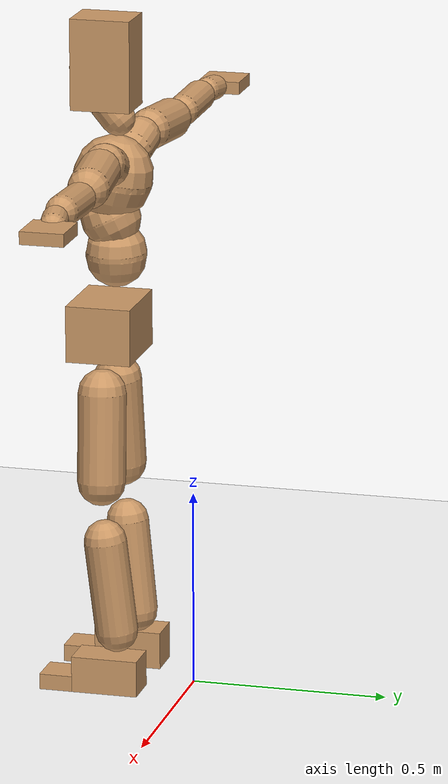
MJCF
<mujoco model="humanoid">
  <option integrator="implicitfast" />

  <visual>
    <global offwidth="1280" offheight="960" />
    <headlight active="1" ambient="0.34 0.34 0.34" diffuse="0.5 0.5 0.5" />
  </visual>

  <default>
    <joint damping="2" stiffness="2" armature="0.01" limited="true" solimplimit="0 .99 .01" />
    <geom condim="1" friction="0.7 0.005 0.0001" solimp=".99 .99 .003" solref="0.015 1" margin="0.001" rgba="0.8 0.6 .4 1" />
    <default class="smplcontact">
      <geom condim="3" friction="1. 0.005 0.0001" solref="0.015 1" solimp="0.98 0.98 0.001" priority="1" />
    </default>
    <default class="stiff_medium">
      <joint stiffness="10" />
    </default>
    <default class="stiff_medium_higher">
      <joint stiffness="50" />
    </default>
    <default class="stiff_high">
      <joint stiffness="100" />
    </default>
  </default>

  <asset>
    <texture type="skybox" builtin="gradient" rgb1="0.99 0.99 0.99" rgb2="0.608 0.828 0.892" width="100" />
    <texture builtin="flat" height="1278" mark="cross" markrgb="1 1 1" name="texgeom" random="0.01" rgb1="0.8 0.6 0.4" rgb2="0.8 0.6 0.4" type="cube" width="127" />
    <texture name="texplane" type="2d" builtin="checker" markrgb="1 1 1" rgb1="0.756 0.772 0.76" rgb2="0.6 0.6 0.6" width="100" height="100" />
    <material name="MatPlane" reflectance="0.5" texture="texplane" texrepeat="1 1" texuniform="true" />
    <material name="geom" texture="texgeom" texuniform="true" />
  </asset>

  <worldbody>
    <light name="tracking_light" pos="0 0 7" dir="0 0 -1" directional="true" cutoff="100" exponent="1" diffuse="1 1 1" specular="0.1 0.1 0.1" mode="trackcom" />
    <camera name="back" pos="0 3 2.4" xyaxes="-1 0 0 0 -1 2" mode="trackcom" />
    <camera name="side" pos="-3 0 2.4" xyaxes="0 -1 0 1 0 2" mode="trackcom" />
    <camera name="front_side" pos="-2.8 -2.8 0.8" xyaxes="0.5 -0.5 0 0.1 0.1 1" mode="trackcom" />
    <geom condim="3" name="floor" pos="0 0 0" rgba="1 1 1 1" size="100 100 .2" type="plane" material="MatPlane" />
    <body name="Pelvis" pos="-0.0018 -0.2233 0.9367" euler="90 0 0">
      <site name="Pelvis" size="0.01" />
      <freejoint name="Pelvis" />
      <geom type="box" pos="-0.0000 -0.0121 -0.0055" size="0.1069 0.0722 0.083" quat="1.0000 0.0000 0.0000 0.0000" density="3165.830099" name="Pelvis" />
      <body name="L_Hip" pos="0.0695 -0.0914 -0.0068">
        <joint name="L_Hip_x" type="hinge" pos="0 0 0" axis="1 0 0" stiffness="10.0" range="-160.0 22.92" class="stiff_medium" damping="15.0" armature="0.01"/>
        <joint name="L_Hip_y" type="hinge" pos="0 0 0" axis="0 1 0" stiffness="10.0" range="-70.0 70.0" class="stiff_medium" damping="10.000000000000004" armature="0.01000000000000001"/>
        <joint name="L_Hip_z" type="hinge" pos="0 0 0" axis="0 0 1" stiffness="10.0" range="-28.65 90.0" class="stiff_medium" damping="10.0" armature="0.01"/>
        <geom type="capsule" density="2040.816327" fromto="0.0069 -0.075 -0.0009 0.0274 -0.3002 -0.0036" size="0.0615" name="L_Hip" />
        <body name="L_Knee" pos="0.0343 -0.3752 -0.0045">
          <joint name="L_Knee_x" type="hinge" pos="0 0 0" axis="1 0 0" range="-5.16 171.89" damping="7.999999999999999" armature="0.009999999999999998" stiffness="2.0"/>
          <joint name="L_Knee_y" type="hinge" pos="0 0 0" axis="0 1 0" range="-4.58 6.88" damping="7.999999999999998" armature="0.009999999999999995" stiffness="2.0"/>
          <joint name="L_Knee_z" type="hinge" pos="0 0 0" axis="0 0 1" range="-6.88 4.58" damping="7.999999999999999" armature="0.009999999999999998" stiffness="2.0"/>
          <geom type="capsule" density="1234.567901" fromto="-0.0027 -0.0796 -0.0087 -0.0109 -0.3184 -0.035" size="0.0541" name="L_Knee" />
          <body name="L_Ankle" pos="-0.0136 -0.398 -0.0437">
            <joint name="L_Ankle_x" type="hinge" pos="0 0 0" axis="1 0 0" range="-45.84 45.84" class="stiff_medium" damping="6.000000000000037" armature="0.010000000000000127" stiffness="10.0"/>
            <joint name="L_Ankle_y" type="hinge" pos="0 0 0" axis="0 1 0" range="-74.48 22.92" class="stiff_medium" damping="3.0" armature="0.010000000000000002" stiffness="10.0"/>
            <joint name="L_Ankle_z" type="hinge" pos="0 0 0" axis="0 0 1" range="-4.58 4.58" class="stiff_medium" damping="5.999999999999975" armature="0.009999999999999919" stiffness="10.0"/>
            <geom type="box" pos="0.0233 -0.0239 0.0242" size="0.0483 0.0464 0.085" quat="1.0000 0.0000 0.0000 0.0000" density="449.071558" name="L_Ankle" class="smplcontact" />
            <body name="L_Toe" pos="0.0264 -0.0558 0.1193">
              <joint name="L_Toe_x" type="hinge" pos="0 0 0" axis="1 0 0" range="-91.67 22.92" armature="0.009999999999998933" damping="1.9999999999998932" stiffness="2.0"/>
              <joint name="L_Toe_y" type="hinge" pos="0 0 0" axis="0 1 0" range="-4.58 4.58" armature="0.009999999999999976" damping="1.9999999999999976" stiffness="2.0"/>
              <joint name="L_Toe_z" type="hinge" pos="0 0 0" axis="0 0 1" range="-4.58 4.58" armature="0.009999999999998701" damping="1.9999999999998699" stiffness="2.0"/>
              <geom type="box" pos="-0.003 0.0055 0.0248" size="0.0478 0.02 0.0496" quat="1.0000 0.0000 0.0000 0.0000" density="423.206892" name="L_Toe" class="smplcontact" />
            </body>
          </body>
        </body>
      </body>
      <body name="R_Hip" pos="-0.0677 -0.0905 -0.0043">
        <joint name="R_Hip_x" type="hinge" pos="0 0 0" axis="1 0 0" stiffness="10.0" range="-160.0 22.92" class="stiff_medium" damping="15.0" armature="0.01"/>
        <joint name="R_Hip_y" type="hinge" pos="0 0 0" axis="0 1 0" stiffness="10.0" range="-70.0 70.0" class="stiff_medium" damping="10.000000000000004" armature="0.01000000000000001"/>
        <joint name="R_Hip_z" type="hinge" pos="0 0 0" axis="0 0 1" stiffness="10.0" range="-90.0 28.65" class="stiff_medium" damping="10.0" armature="0.01"/>
        <geom type="capsule" density="2040.816327" fromto="-0.0077 -0.0765 -0.0018 -0.0306 -0.3061 -0.0071" size="0.0606" name="R_Hip" />
        <body name="R_Knee" pos="-0.0383 -0.3826 -0.0089">
          <joint name="R_Knee_x" type="hinge" pos="0 0 0" axis="1 0 0" range="-5.16 171.89" damping="7.999999999999999" armature="0.009999999999999998" stiffness="2.0"/>
          <joint name="R_Knee_y" type="hinge" pos="0 0 0" axis="0 1 0" range="-6.88 4.58" damping="7.999999999999998" armature="0.009999999999999995" stiffness="2.0"/>
          <joint name="R_Knee_z" type="hinge" pos="0 0 0" axis="0 0 1" range="-4.58 6.88" damping="7.999999999999999" armature="0.009999999999999998" stiffness="2.0"/>
          <geom type="capsule" density="1234.567901" fromto="0.0032 -0.0797 -0.0085 0.0126 -0.3187 -0.0338" size="0.0541" name="R_Knee" />
          <body name="R_Ankle" pos="0.0158 -0.3984 -0.0423">
            <joint name="R_Ankle_x" type="hinge" pos="0 0 0" axis="1 0 0" range="-45.84 45.84" class="stiff_medium" damping="6.000000000000037" armature="0.010000000000000127" stiffness="10.0"/>
            <joint name="R_Ankle_y" type="hinge" pos="0 0 0" axis="0 1 0" range="-22.92 74.48" class="stiff_medium" damping="3.0" armature="0.010000000000000002" stiffness="10.0"/>
            <joint name="R_Ankle_z" type="hinge" pos="0 0 0" axis="0 0 1" range="-4.58 4.58" class="stiff_medium" damping="5.999999999999975" armature="0.009999999999999919" stiffness="10.0"/>
            <geom type="box" pos="-0.0212 -0.0174 0.0256" size="0.0483 0.0478 0.0865" quat="1.0000 0.0000 0.0000 0.0000" density="434.700981" name="R_Ankle" class="smplcontact" />
            <body name="R_Toe" pos="-0.0254 -0.0481 0.1233">
              <joint name="R_Toe_x" type="hinge" pos="0 0 0" axis="1 0 0" range="-91.67 22.92" armature="0.009999999999998933" damping="1.9999999999998932" stiffness="2.0"/>
              <joint name="R_Toe_y" type="hinge" pos="0 0 0" axis="0 1 0" range="-4.58 4.58" armature="0.009999999999999976" damping="1.9999999999999976" stiffness="2.0"/>
              <joint name="R_Toe_z" type="hinge" pos="0 0 0" axis="0 0 1" range="-4.58 4.58" armature="0.009999999999998701" damping="1.9999999999998699" stiffness="2.0"/>
              <geom type="box" pos="0.0042 0.0045 0.0227" size="0.0479 0.0216 0.0493" quat="1.0000 0.0000 0.0000 0.0000" density="407.384095" name="R_Toe" class="smplcontact" />
            </body>
          </body>
        </body>
      </body>
      <body name="Torso" pos="-0.0025 0.109 -0.0267">
        <joint name="Torso_x" type="hinge" pos="0 0 0" axis="1 0 0" range="-25.78 57.3" class="stiff_medium" damping="15.026504417650502" armature="0.010027654392897904" stiffness="10.007694772727273"/>
        <joint name="Torso_y" type="hinge" pos="0 0 0" axis="0 1 0" range="-57.3 57.3" class="stiff_high" damping="20.015098709190056" armature="0.010000594455056204" stiffness="100.1450909090909"/>
        <joint name="Torso_z" type="hinge" pos="0 0 0" axis="0 0 1" range="-34.38 34.38" class="stiff_high" damping="20.024293525642918" armature="0.010018547160022102" stiffness="100.05750454545455"/>
        <geom type="capsule" density="2040.816327" fromto="0.0025 0.0608 0.0005 0.003 0.0743 0.0006" size="0.0769" name="Torso" />
        <body name="Spine" pos="0.0055 0.1352 0.0011">
          <joint name="Spine_x" type="hinge" pos="0 0 0" axis="1 0 0" stiffness="10.013677045454546" range="-25.78 57.3" class="stiff_medium" damping="15.047055212503015" armature="0.010049094499691255"/>
          <joint name="Spine_y" type="hinge" pos="0 0 0" axis="0 1 0" stiffness="10.01353409090909" range="-57.3 57.3" class="stiff_high" damping="8.005638717020275" armature="0.010000566902379769"/>
          <joint name="Spine_z" type="hinge" pos="0 0 0" axis="0 0 1" stiffness="20.030769090909093" range="-34.38 34.38" class="stiff_high" damping="12.022994090892643" armature="0.010022940363896636"/>
          <geom type="capsule" density="2040.816327" fromto="0.0007 0.0238 0.0114 0.0008 0.0291 0.014" size="0.0755" name="Spine" />
          <body name="Chest" pos="0.0015 0.0529 0.0254">
            <joint name="Chest_x" type="hinge" pos="0 0 0" axis="1 0 0" stiffness="10.025995454545454" range="-25.78 57.3" class="stiff_medium" damping="15.065859452861982" armature="0.010061849145939052"/>
            <joint name="Chest_y" type="hinge" pos="0 0 0" axis="0 1 0" stiffness="10.00953272727273" range="-57.3 57.3" class="stiff_high" damping="8.0037821214336" armature="0.009999924882987418"/>
            <joint name="Chest_z" type="hinge" pos="0 0 0" axis="0 0 1" stiffness="20.04161681818182" range="-34.38 34.38" class="stiff_high" damping="12.026765484445601" armature="0.01002380095503679"/>
            <geom type="capsule" density="2040.816327" fromto="-0.0009 0.0682 -0.0173 -0.001 0.0833 -0.0212" size="0.1002" name="Chest" />
            <body name="Neck" pos="-0.0028 0.2139 -0.0429">
              <joint name="Neck_x" type="hinge" pos="0 0 0" axis="1 0 0" range="-28.65 57.3" class="stiff_medium_higher" damping="10.156201731515154" armature="0.010197270455069218" stiffness="50.57649204545454"/>
              <joint name="Neck_y" type="hinge" pos="0 0 0" axis="0 1 0" range="-40.11 40.11" class="stiff_medium_higher" damping="10.09847464772595" armature="0.010079507034156452" stiffness="50.58738977272728"/>
              <joint name="Neck_z" type="hinge" pos="0 0 0" axis="0 0 1" range="-40.11 40.11" class="stiff_medium_higher" damping="10.160616349269969" armature="0.010199976629801651" stiffness="50.60703977272728"/>
              <geom type="capsule" density="1000" fromto="0.001 0.013 0.0103 0.0041 0.052 0.0411" size="0.0436" name="Neck" />
              <body name="Head" pos="0.005265 0.0658125 0.0519412">
                <joint name="Head_x" type="hinge" pos="0 0 0" axis="1 0 0" range="-28.65 57.3" class="stiff_medium_higher" damping="2.0263591442136093" armature="0.010138596003303977" stiffness="50.62500000000001"/>
                <joint name="Head_y" type="hinge" pos="0 0 0" axis="0 1 0" range="-40.11 40.11" class="stiff_medium_higher" damping="2.0136277227332497" armature="0.010011596557431833" stiffness="50.62500000000001"/>
                <joint name="Head_z" type="hinge" pos="0 0 0" axis="0 0 1" range="-40.11 40.11" class="stiff_medium_higher" damping="2.026987453225785" armature="0.010144884285270994" stiffness="50.62500000000001"/>
                <geom type="box" pos="-0.0042525 0.088695 -0.011745" size="0.0606 0.1154 0.076" quat="1.0000 0.0000 0.0000 0.0000" density="1018.069894" name="Head" />
                <geom type="capsule" name="nose" size="0.02 0.01" pos="0 0.070875 0.050625" quat="1 0 0 0" mass="0" contype="0" conaffinity="0" />
              </body>
            </body>
            <body name="L_Thorax" pos="0.0788 0.1217 -0.0341">
              <joint name="L_Thorax_x" type="hinge" pos="0 0 0" axis="1 0 0" range="-10.89 4.58" class="stiff_medium_higher" damping="19.999999999999936" armature="0.009999999999999936" stiffness="50.0"/>
              <joint name="L_Thorax_y" type="hinge" pos="0 0 0" axis="0 1 0" range="-28.65 17.19" class="stiff_medium_higher" damping="20.0" armature="0.01" stiffness="50.0"/>
              <joint name="L_Thorax_z" type="hinge" pos="0 0 0" axis="0 0 1" range="-31.51 40.11" class="stiff_medium_higher" damping="20.0" armature="0.01" stiffness="50.0"/>
              <geom type="capsule" density="1000" fromto="0.0182 0.0061 -0.0018 0.0728 0.0244 -0.0071" size="0.0521" name="L_Thorax" />
              <body name="L_Shoulder" pos="0.091 0.0305 -0.0089">
                <joint name="L_Shoulder_x" type="hinge" pos="0 0 0" axis="1 0 0" range="-97.4 97.4" class="stiff_medium" damping="6.0000000000000515" armature="0.010000000000000174" stiffness="10.0"/>
                <joint name="L_Shoulder_y" type="hinge" pos="0 0 0" axis="0 1 0" range="-108.86 80.21" class="stiff_medium" damping="5.999999999999999" armature="0.009999999999999998" stiffness="10.0"/>
                <joint name="L_Shoulder_z" type="hinge" pos="0 0 0" axis="0 0 1" range="-97.4 85.94" class="stiff_medium" damping="6.0" armature="0.010000000000000002" stiffness="10.0"/>
                <geom type="capsule" density="1000" fromto="0.0519 -0.0026 -0.0055 0.2077 -0.0102 -0.022" size="0.0517" name="L_Shoulder" />
                <body name="L_Elbow" pos="0.2596 -0.0128 -0.0275">
                  <joint name="L_Elbow_x" type="hinge" pos="0 0 0" axis="1 0 0" range="-17.19 4.58" damping="4.999999999999907" armature="0.009999999999999627" stiffness="2.0"/>
                  <joint name="L_Elbow_y" type="hinge" pos="0 0 0" axis="0 1 0" range="-180.0 17.19" damping="5.000000000000005" armature="0.010000000000000023" stiffness="2.0"/>
                  <joint name="L_Elbow_z" type="hinge" pos="0 0 0" axis="0 0 1" range="-100.84 4.58" damping="5.000000000000002" armature="0.010000000000000009" stiffness="2.0"/>
                  <geom type="capsule" density="1000" fromto="0.0498 0.0018 -0.0002 0.1994 0.0072 -0.0009" size="0.0405" name="L_Elbow" />
                  <body name="L_Wrist" pos="0.2492 0.009 -0.0012">
                    <joint name="L_Wrist_x" type="hinge" pos="0 0 0" axis="1 0 0" range="-180.0 22.92" armature="0.009999999999999596" damping="1.9999999999999596" stiffness="2.0"/>
                    <joint name="L_Wrist_y" type="hinge" pos="0 0 0" axis="0 1 0" range="-17.19 17.19" armature="0.009999999999999882" damping="1.999999999999988" stiffness="2.0"/>
                    <joint name="L_Wrist_z" type="hinge" pos="0 0 0" axis="0 0 1" range="-22.92 22.92" armature="0.009999999999999995" damping="1.9999999999999996" stiffness="2.0"/>
                    <geom type="capsule" density="1000" fromto="0.0168 -0.0016 -0.003 0.0672 -0.0065 -0.012" size="0.0318" name="L_Wrist" class="smplcontact" />
                    <body name="L_Hand" pos="0.084 -0.0082 -0.0149">
                      <joint name="L_Hand_x" type="hinge" pos="0 0 0" axis="1 0 0" range="-17.19 17.19" armature="0.009999999999999867" damping="1.9999999999999867" stiffness="2.0"/>
                      <joint name="L_Hand_y" type="hinge" pos="0 0 0" axis="0 1 0" range="-51.57 51.57" armature="0.00999999999999994" damping="1.999999999999994" stiffness="2.0"/>
                      <joint name="L_Hand_z" type="hinge" pos="0 0 0" axis="0 0 1" range="-91.67 91.67" armature="0.010000000000000162" damping="2.000000000000016" stiffness="2.0"/>
                      <geom type="box" pos="0.0493 0.001 -0.0058" size="0.0585 0.0158 0.0538" quat="1.0000 0.0000 0.0000 0.0000" density="400.552564" name="L_Hand" class="smplcontact" />
                    </body>
                  </body>
                </body>
              </body>
            </body>
            <body name="R_Thorax" pos="-0.0818 0.1188 -0.0386">
              <joint name="R_Thorax_x" type="hinge" pos="0 0 0" axis="1 0 0" range="-10.89 4.58" class="stiff_medium_higher" damping="19.999999999999936" armature="0.009999999999999936" stiffness="50.0"/>
              <joint name="R_Thorax_y" type="hinge" pos="0 0 0" axis="0 1 0" range="-17.19 28.65" class="stiff_medium_higher" damping="20.0" armature="0.01" stiffness="50.0"/>
              <joint name="R_Thorax_z" type="hinge" pos="0 0 0" axis="0 0 1" range="-40.11 31.51" class="stiff_medium_higher" damping="20.0" armature="0.01" stiffness="50.0"/>
              <geom type="capsule" density="1000" fromto="-0.0192 0.0065 -0.0018 -0.0768 0.026 -0.0073" size="0.0511" name="R_Thorax" />
              <body name="R_Shoulder" pos="-0.096 0.0326 -0.0091">
                <joint name="R_Shoulder_x" type="hinge" pos="0 0 0" axis="1 0 0" range="-97.4 97.4" class="stiff_medium" damping="6.0000000000000515" armature="0.010000000000000174" stiffness="10.0"/>
                <joint name="R_Shoulder_y" type="hinge" pos="0 0 0" axis="0 1 0" range="-80.21 108.86" class="stiff_medium" damping="5.999999999999999" armature="0.009999999999999998" stiffness="10.0"/>
                <joint name="R_Shoulder_z" type="hinge" pos="0 0 0" axis="0 0 1" range="-85.94 97.4" class="stiff_medium" damping="6.0" armature="0.010000000000000002" stiffness="10.0"/>
                <geom type="capsule" density="1000" fromto="-0.0507 -0.0027 -0.0043 -0.203 -0.0107 -0.0171" size="0.0531" name="R_Shoulder" />
                <body name="R_Elbow" pos="-0.2537 -0.0133 -0.0214">
                  <joint name="R_Elbow_x" type="hinge" pos="0 0 0" axis="1 0 0" range="-17.19 4.58" damping="4.999999999999907" armature="0.009999999999999627" stiffness="2.0"/>
                  <joint name="R_Elbow_y" type="hinge" pos="0 0 0" axis="0 1 0" range="-17.19 180.0" damping="5.000000000000005" armature="0.010000000000000023" stiffness="2.0"/>
                  <joint name="R_Elbow_z" type="hinge" pos="0 0 0" axis="0 0 1" range="-4.58 100.84" damping="5.000000000000002" armature="0.010000000000000009" stiffness="2.0"/>
                  <geom type="capsule" density="1000" fromto="-0.0511 0.0016 -0.0011 -0.2042 0.0062 -0.0044" size="0.0408" name="R_Elbow" />
                  <body name="R_Wrist" pos="-0.2553 0.0078 -0.0056">
                    <joint name="R_Wrist_x" type="hinge" pos="0 0 0" axis="1 0 0" range="-180.0 22.92" armature="0.009999999999999596" damping="1.9999999999999596" stiffness="2.0"/>
                    <joint name="R_Wrist_y" type="hinge" pos="0 0 0" axis="0 1 0" range="-17.19 17.19" armature="0.009999999999999882" damping="1.999999999999988" stiffness="2.0"/>
                    <joint name="R_Wrist_z" type="hinge" pos="0 0 0" axis="0 0 1" range="-22.92 22.92" armature="0.009999999999999995" damping="1.9999999999999996" stiffness="2.0"/>
                    <geom type="capsule" density="1000" fromto="-0.0169 -0.0012 -0.0021 -0.0677 -0.0049 -0.0083" size="0.0326" name="R_Wrist" class="smplcontact" />
                    <body name="R_Hand" pos="-0.0846 -0.0061 -0.0103">
                      <joint name="R_Hand_x" type="hinge" pos="0 0 0" axis="1 0 0" range="-17.19 17.19" armature="0.009999999999999867" damping="1.9999999999999867" stiffness="2.0"/>
                      <joint name="R_Hand_y" type="hinge" pos="0 0 0" axis="0 1 0" range="-51.57 51.57" armature="0.00999999999999994" damping="1.999999999999994" stiffness="2.0"/>
                      <joint name="R_Hand_z" type="hinge" pos="0 0 0" axis="0 0 1" range="-91.67 91.67" armature="0.010000000000000162" damping="2.000000000000016" stiffness="2.0"/>
                      <geom type="box" pos="-0.0462 -0.0009 -0.0079" size="0.0569 0.0164 0.0546" quat="1.0000 0.0000 0.0000 0.0000" density="403.679611" name="R_Hand" class="smplcontact" />
                    </body>
                  </body>
                </body>
              </body>
            </body>
          </body>
        </body>
      </body>
    </body>
  </worldbody>
  <actuator>
    <general name="L_Hip_x" joint="L_Hip_x" biastype="affine" gainprm="287.33006409732246" biasprm="-215.3247604770444 -180.0 -2.0" ctrllimited="true" ctrlrange="-1 1" forcerange="-360.0 360.0" />
    <general name="L_Hip_y" joint="L_Hip_y" biastype="affine" gainprm="219.9114857512855" biasprm="0.0 -180.0 -2.000000000000001" ctrllimited="true" ctrlrange="-1 1" forcerange="-360.0 360.0" />
    <general name="L_Hip_z" joint="L_Hip_z" biastype="affine" gainprm="186.3749841742145" biasprm="96.3683546488669 -180.0 -2.0" ctrllimited="true" ctrlrange="-1 1" forcerange="-360.0 360.0" />
    <general name="L_Knee_x" joint="L_Knee_x" biastype="affine" gainprm="278.10948965903646" biasprm="261.8988715665131 -180.0 -1.9999999999999998" ctrllimited="true" ctrlrange="-1 1" forcerange="-360.0 360.0" />
    <general name="L_Knee_y" joint="L_Knee_y" biastype="affine" gainprm="18.001325905069514" biasprm="3.612831551628262 -180.0 -1.9999999999999996" ctrllimited="true" ctrlrange="-1 1" forcerange="-360.0 360.0" />
    <general name="L_Knee_z" joint="L_Knee_z" biastype="affine" gainprm="18.001325905069514" biasprm="-3.612831551628262 -180.0 -1.9999999999999998" ctrllimited="true" ctrlrange="-1 1" forcerange="-360.0 360.0" />
    <general name="L_Ankle_x" joint="L_Ankle_x" biastype="affine" gainprm="72.00530362027807" biasprm="0.0 -90.0 -2.0000000000000124" ctrllimited="true" ctrlrange="-1 1" forcerange="-180.0 180.0" />
    <general name="L_Ankle_y" joint="L_Ankle_y" biastype="affine" gainprm="76.49778111491148" biasprm="-40.49512930477244 -90.0 -2.0" ctrllimited="true" ctrlrange="-1 1" forcerange="-180.0 180.0" />
    <general name="L_Ankle_z" joint="L_Ankle_z" biastype="affine" gainprm="7.1942471767206255" biasprm="0.0 -90.0 -1.9999999999999918" ctrllimited="true" ctrlrange="-1 1" forcerange="-180.0 180.0" />
    <general name="L_Toe_x" joint="L_Toe_x" biastype="affine" gainprm="71.99902043497087" biasprm="-43.19689898685965 -72.0 -0.7999999999999573" ctrllimited="true" ctrlrange="-1 1" forcerange="-144.0 144.0" />
    <general name="L_Toe_y" joint="L_Toe_y" biastype="affine" gainprm="5.755397741376501" biasprm="0.0 -72.0 -0.799999999999999" ctrllimited="true" ctrlrange="-1 1" forcerange="-144.0 144.0" />
    <general name="L_Toe_z" joint="L_Toe_z" biastype="affine" gainprm="5.755397741376501" biasprm="0.0 -72.0 -0.799999999999948" ctrllimited="true" ctrlrange="-1 1" forcerange="-144.0 144.0" />
    <general name="R_Hip_x" joint="R_Hip_x" biastype="affine" gainprm="287.33006409732246" biasprm="-215.3247604770444 -180.0 -2.0" ctrllimited="true" ctrlrange="-1 1" forcerange="-360.0 360.0" />
    <general name="R_Hip_y" joint="R_Hip_y" biastype="affine" gainprm="219.9114857512855" biasprm="0.0 -180.0 -2.000000000000001" ctrllimited="true" ctrlrange="-1 1" forcerange="-360.0 360.0" />
    <general name="R_Hip_z" joint="R_Hip_z" biastype="affine" gainprm="186.3749841742145" biasprm="-96.3683546488669 -180.0 -2.0" ctrllimited="true" ctrlrange="-1 1" forcerange="-360.0 360.0" />
    <general name="R_Knee_x" joint="R_Knee_x" biastype="affine" gainprm="278.10948965903646" biasprm="261.8988715665131 -180.0 -1.9999999999999998" ctrllimited="true" ctrlrange="-1 1" forcerange="-360.0 360.0" />
    <general name="R_Knee_y" joint="R_Knee_y" biastype="affine" gainprm="18.001325905069514" biasprm="-3.612831551628262 -180.0 -1.9999999999999996" ctrllimited="true" ctrlrange="-1 1" forcerange="-360.0 360.0" />
    <general name="R_Knee_z" joint="R_Knee_z" biastype="affine" gainprm="18.001325905069514" biasprm="3.612831551628262 -180.0 -1.9999999999999998" ctrllimited="true" ctrlrange="-1 1" forcerange="-360.0 360.0" />
    <general name="R_Ankle_x" joint="R_Ankle_x" biastype="affine" gainprm="72.00530362027807" biasprm="0.0 -90.0 -2.0000000000000124" ctrllimited="true" ctrlrange="-1 1" forcerange="-180.0 180.0" />
    <general name="R_Ankle_y" joint="R_Ankle_y" biastype="affine" gainprm="76.49778111491148" biasprm="40.49512930477244 -90.0 -2.0" ctrllimited="true" ctrlrange="-1 1" forcerange="-180.0 180.0" />
    <general name="R_Ankle_z" joint="R_Ankle_z" biastype="affine" gainprm="7.1942471767206255" biasprm="0.0 -90.0 -1.9999999999999918" ctrllimited="true" ctrlrange="-1 1" forcerange="-180.0 180.0" />
    <general name="R_Toe_x" joint="R_Toe_x" biastype="affine" gainprm="71.99902043497087" biasprm="-43.19689898685965 -72.0 -0.7999999999999573" ctrllimited="true" ctrlrange="-1 1" forcerange="-144.0 144.0" />
    <general name="R_Toe_y" joint="R_Toe_y" biastype="affine" gainprm="5.755397741376501" biasprm="0.0 -72.0 -0.799999999999999" ctrllimited="true" ctrlrange="-1 1" forcerange="-144.0 144.0" />
    <general name="R_Toe_z" joint="R_Toe_z" biastype="affine" gainprm="5.755397741376501" biasprm="0.0 -72.0 -0.799999999999948" ctrllimited="true" ctrlrange="-1 1" forcerange="-144.0 144.0" />
    <general name="Torso_x" joint="Torso_x" biastype="affine" gainprm="174.13623595678766" biasprm="66.06613092631133 -240.18467454545456 -4.007067844706801" ctrllimited="true" ctrlrange="-1 1" forcerange="-360.27701181818185 360.27701181818185" />
    <general name="Torso_y" joint="Torso_y" biastype="affine" gainprm="240.3659225663146" biasprm="0.0 -240.34821818181814 -4.003019741838012" ctrllimited="true" ctrlrange="-1 1" forcerange="-360.52232727272724 360.52232727272724" />
    <general name="Torso_z" joint="Torso_z" biastype="affine" gainprm="144.09341988565615" biasprm="0.0 -240.1380109090909 -4.0048587051285836" ctrllimited="true" ctrlrange="-1 1" forcerange="-360.20701636363634 360.20701636363634" />
    <general name="Spine_x" joint="Spine_x" biastype="affine" gainprm="174.24032890514903" biasprm="66.10562309930545 -240.32824909090908 -4.0125480566674705" ctrllimited="true" ctrlrange="-1 1" forcerange="-360.49237363636365 360.49237363636365" />
    <general name="Spine_y" joint="Spine_y" biastype="affine" gainprm="240.34252084263804" biasprm="0.0 -240.3248181818182 -4.002819358510138" ctrllimited="true" ctrlrange="-1 1" forcerange="-360.4872272727273 360.4872272727273" />
    <general name="Spine_z" joint="Spine_z" biastype="affine" gainprm="144.23216101385907" biasprm="0.0 -240.36922909090913 -4.0076646969642145" ctrllimited="true" ctrlrange="-1 1" forcerange="-360.5538436363637 360.5538436363637" />
    <general name="Chest_x" joint="Chest_x" biastype="affine" gainprm="174.45467211212937" biasprm="66.186943487895 -240.62389090909087 -4.017562520763195" ctrllimited="true" ctrlrange="-1 1" forcerange="-360.9358363636363 360.9358363636363" />
    <general name="Chest_y" joint="Chest_y" biastype="affine" gainprm="240.24648104146092" biasprm="0.0 -240.22878545454552 -4.0018910607168" ctrllimited="true" ctrlrange="-1 1" forcerange="-360.34317818181825 360.34317818181825" />
    <general name="Chest_z" joint="Chest_z" biastype="affine" gainprm="144.31027040344532" biasprm="0.0 -240.4994018181818 -4.008921828148534" ctrllimited="true" ctrlrange="-1 1" forcerange="-360.7491027272727 360.7491027272727" />
    <general name="Neck_x" joint="Neck_x" biastype="affine" gainprm="27.313317493361495" biasprm="9.104439164453831 -36.415074272727274 -0.8124961385212123" ctrllimited="true" ctrlrange="-1 1" forcerange="-72.83014854545455 72.83014854545455" />
    <general name="Neck_y" joint="Neck_y" biastype="affine" gainprm="25.497922519598035" biasprm="0.0 -36.42292063636364 -0.8078779718180761" ctrllimited="true" ctrlrange="-1 1" forcerange="-72.84584127272728 72.84584127272728" />
    <general name="Neck_z" joint="Neck_z" biastype="affine" gainprm="25.507826849111005" biasprm="0.0 -36.43706863636364 -0.8128493079415975" ctrllimited="true" ctrlrange="-1 1" forcerange="-72.87413727272728 72.87413727272728" />
    <general name="Head_x" joint="Head_x" biastype="affine" gainprm="18.226342478882888" biasprm="6.075447492960962 -24.300000000000004 -0.8105436576854438" ctrllimited="true" ctrlrange="-1 1" forcerange="-48.60000000000001 48.60000000000001" />
    <general name="Head_y" joint="Head_y" biastype="affine" gainprm="17.011252980290692" biasprm="0.0 -24.300000000000004 -0.8054510890933" ctrllimited="true" ctrlrange="-1 1" forcerange="-48.60000000000001 48.60000000000001" />
    <general name="Head_z" joint="Head_z" biastype="affine" gainprm="17.011252980290692" biasprm="0.0 -24.300000000000004 -0.810794981290314" ctrllimited="true" ctrlrange="-1 1" forcerange="-48.60000000000001 48.60000000000001" />
    <general name="L_Thorax_x" joint="L_Thorax_x" biastype="affine" gainprm="16.200146117011364" biasprm="-6.6078165480505335 -120.0 -1.599999999999995" ctrllimited="true" ctrlrange="-1 1" forcerange="-240.0 240.0" />
    <general name="L_Thorax_y" joint="L_Thorax_y" biastype="affine" gainprm="48.00353574685204" biasprm="-12.00088393671301 -120.0 -1.6" ctrllimited="true" ctrlrange="-1 1" forcerange="-240.0 240.0" />
    <general name="L_Thorax_z" joint="L_Thorax_z" biastype="affine" gainprm="75.00028861670033" biasprm="9.00589894029074 -120.0 -1.6" ctrllimited="true" ctrlrange="-1 1" forcerange="-240.0 240.0" />
    <general name="L_Shoulder_x" joint="L_Shoulder_x" biastype="affine" gainprm="81.5976331892389" biasprm="0.0 -48.0 -1.6000000000000139" ctrllimited="true" ctrlrange="-1 1" forcerange="-96.0 96.0" />
    <general name="L_Shoulder_y" joint="L_Shoulder_y" biastype="affine" gainprm="79.19745640189629" biasprm="-12.00088393671301 -48.0 -1.5999999999999999" ctrllimited="true" ctrlrange="-1 1" forcerange="-96.0 96.0" />
    <general name="L_Shoulder_z" joint="L_Shoulder_z" biastype="affine" gainprm="76.79727961455369" biasprm="-4.800353574685214 -48.0 -1.6" ctrllimited="true" ctrlrange="-1 1" forcerange="-96.0 96.0" />
    <general name="L_Elbow_x" joint="L_Elbow_x" biastype="affine" gainprm="13.67849441372996" biasprm="-7.923096672353461 -72.0 -0.7999999999999852" ctrllimited="true" ctrlrange="-1 1" forcerange="-144.0 144.0" />
    <general name="L_Elbow_y" joint="L_Elbow_y" biastype="affine" gainprm="123.89813107227425" biasprm="-102.29653998619085 -72.0 -0.8000000000000009" ctrllimited="true" ctrlrange="-1 1" forcerange="-144.0 144.0" />
    <general name="L_Elbow_z" joint="L_Elbow_z" biastype="affine" gainprm="66.23733950828719" biasprm="-60.4819417669107 -72.0 -0.8000000000000004" ctrllimited="true" ctrlrange="-1 1" forcerange="-144.0 144.0" />
    <general name="L_Wrist_x" joint="L_Wrist_x" biastype="affine" gainprm="21.24973270888136" biasprm="-16.449379134196157 -12.0 -0.7999999999999838" ctrllimited="true" ctrlrange="-1 1" forcerange="-24.0 24.0" />
    <general name="L_Wrist_y" joint="L_Wrist_y" biastype="affine" gainprm="3.6002651810139037" biasprm="0.0 -12.0 -0.7999999999999953" ctrllimited="true" ctrlrange="-1 1" forcerange="-24.0 24.0" />
    <general name="L_Wrist_z" joint="L_Wrist_z" biastype="affine" gainprm="4.800353574685205" biasprm="0.0 -12.0 -0.7999999999999998" ctrllimited="true" ctrlrange="-1 1" forcerange="-24.0 24.0" />
    <general name="L_Hand_x" joint="L_Hand_x" biastype="affine" gainprm="3.6002651810139037" biasprm="0.0 -12.0 -0.7999999999999947" ctrllimited="true" ctrlrange="-1 1" forcerange="-24.0 24.0" />
    <general name="L_Hand_y" joint="L_Hand_y" biastype="affine" gainprm="10.800795543041708" biasprm="0.0 -12.0 -0.7999999999999976" ctrllimited="true" ctrlrange="-1 1" forcerange="-24.0 24.0" />
    <general name="L_Hand_z" joint="L_Hand_z" biastype="affine" gainprm="19.199319903638422" biasprm="0.0 -12.0 -0.8000000000000065" ctrllimited="true" ctrlrange="-1 1" forcerange="-24.0 24.0" />
    <general name="R_Thorax_x" joint="R_Thorax_x" biastype="affine" gainprm="16.200146117011364" biasprm="-6.6078165480505335 -120.0 -1.599999999999995" ctrllimited="true" ctrlrange="-1 1" forcerange="-240.0 240.0" />
    <general name="R_Thorax_y" joint="R_Thorax_y" biastype="affine" gainprm="48.00353574685204" biasprm="12.000883936713002 -120.0 -1.6" ctrllimited="true" ctrlrange="-1 1" forcerange="-240.0 240.0" />
    <general name="R_Thorax_z" joint="R_Thorax_z" biastype="affine" gainprm="75.00028861670033" biasprm="-9.00589894029074 -120.0 -1.6" ctrllimited="true" ctrlrange="-1 1" forcerange="-240.0 240.0" />
    <general name="R_Shoulder_x" joint="R_Shoulder_x" biastype="affine" gainprm="81.5976331892389" biasprm="0.0 -48.0 -1.6000000000000139" ctrllimited="true" ctrlrange="-1 1" forcerange="-96.0 96.0" />
    <general name="R_Shoulder_y" joint="R_Shoulder_y" biastype="affine" gainprm="79.19745640189629" biasprm="12.00088393671301 -48.0 -1.5999999999999999" ctrllimited="true" ctrlrange="-1 1" forcerange="-96.0 96.0" />
    <general name="R_Shoulder_z" joint="R_Shoulder_z" biastype="affine" gainprm="76.79727961455369" biasprm="4.800353574685204 -48.0 -1.6" ctrllimited="true" ctrlrange="-1 1" forcerange="-96.0 96.0" />
    <general name="R_Elbow_x" joint="R_Elbow_x" biastype="affine" gainprm="13.67849441372996" biasprm="-7.923096672353461 -72.0 -0.7999999999999852" ctrllimited="true" ctrlrange="-1 1" forcerange="-144.0 144.0" />
    <general name="R_Elbow_y" joint="R_Elbow_y" biastype="affine" gainprm="123.89813107227425" biasprm="102.29653998619085 -72.0 -0.8000000000000009" ctrllimited="true" ctrlrange="-1 1" forcerange="-144.0 144.0" />
    <general name="R_Elbow_z" joint="R_Elbow_z" biastype="affine" gainprm="66.23733950828719" biasprm="60.481941766910694 -72.0 -0.8000000000000004" ctrllimited="true" ctrlrange="-1 1" forcerange="-144.0 144.0" />
    <general name="R_Wrist_x" joint="R_Wrist_x" biastype="affine" gainprm="21.24973270888136" biasprm="-16.449379134196157 -12.0 -0.7999999999999838" ctrllimited="true" ctrlrange="-1 1" forcerange="-24.0 24.0" />
    <general name="R_Wrist_y" joint="R_Wrist_y" biastype="affine" gainprm="3.6002651810139037" biasprm="0.0 -12.0 -0.7999999999999953" ctrllimited="true" ctrlrange="-1 1" forcerange="-24.0 24.0" />
    <general name="R_Wrist_z" joint="R_Wrist_z" biastype="affine" gainprm="4.800353574685205" biasprm="0.0 -12.0 -0.7999999999999998" ctrllimited="true" ctrlrange="-1 1" forcerange="-24.0 24.0" />
    <general name="R_Hand_x" joint="R_Hand_x" biastype="affine" gainprm="3.6002651810139037" biasprm="0.0 -12.0 -0.7999999999999947" ctrllimited="true" ctrlrange="-1 1" forcerange="-24.0 24.0" />
    <general name="R_Hand_y" joint="R_Hand_y" biastype="affine" gainprm="10.800795543041708" biasprm="0.0 -12.0 -0.7999999999999976" ctrllimited="true" ctrlrange="-1 1" forcerange="-24.0 24.0" />
    <general name="R_Hand_z" joint="R_Hand_z" biastype="affine" gainprm="19.199319903638422" biasprm="0.0 -12.0 -0.8000000000000065" ctrllimited="true" ctrlrange="-1 1" forcerange="-24.0 24.0" />
  </actuator>
  <contact>
    <exclude body1="Torso" body2="Chest" />
    <exclude body1="Head" body2="Chest" />
    <exclude body1="R_Knee" body2="R_Toe" />
    <exclude body1="R_Knee" body2="L_Ankle" />
    <exclude body1="R_Knee" body2="L_Toe" />
    <exclude body1="L_Knee" body2="L_Toe" />
    <exclude body1="L_Knee" body2="R_Ankle" />
    <exclude body1="L_Knee" body2="R_Toe" />
    <exclude body1="L_Shoulder" body2="Chest" />
    <exclude body1="R_Shoulder" body2="Chest" />
  </contact>
  <sensor>
    <framelinvel name="sensor_Pelvis_framelinvel" objtype="xbody" objname="Pelvis" />
    <framelinvel name="sensor_L_Hip_framelinvel" objtype="xbody" objname="L_Hip" />
    <framelinvel name="sensor_L_Knee_framelinvel" objtype="xbody" objname="L_Knee" />
    <framelinvel name="sensor_L_Ankle_framelinvel" objtype="xbody" objname="L_Ankle" />
    <framelinvel name="sensor_L_Toe_framelinvel" objtype="xbody" objname="L_Toe" />
    <framelinvel name="sensor_R_Hip_framelinvel" objtype="xbody" objname="R_Hip" />
    <framelinvel name="sensor_R_Knee_framelinvel" objtype="xbody" objname="R_Knee" />
    <framelinvel name="sensor_R_Ankle_framelinvel" objtype="xbody" objname="R_Ankle" />
    <framelinvel name="sensor_R_Toe_framelinvel" objtype="xbody" objname="R_Toe" />
    <framelinvel name="sensor_Torso_framelinvel" objtype="xbody" objname="Torso" />
    <framelinvel name="sensor_Spine_framelinvel" objtype="xbody" objname="Spine" />
    <framelinvel name="sensor_Chest_framelinvel" objtype="xbody" objname="Chest" />
    <framelinvel name="sensor_Neck_framelinvel" objtype="xbody" objname="Neck" />
    <framelinvel name="sensor_Head_framelinvel" objtype="xbody" objname="Head" />
    <framelinvel name="sensor_L_Thorax_framelinvel" objtype="xbody" objname="L_Thorax" />
    <framelinvel name="sensor_L_Shoulder_framelinvel" objtype="xbody" objname="L_Shoulder" />
    <framelinvel name="sensor_L_Elbow_framelinvel" objtype="xbody" objname="L_Elbow" />
    <framelinvel name="sensor_L_Wrist_framelinvel" objtype="xbody" objname="L_Wrist" />
    <framelinvel name="sensor_L_Hand_framelinvel" objtype="xbody" objname="L_Hand" />
    <framelinvel name="sensor_R_Thorax_framelinvel" objtype="xbody" objname="R_Thorax" />
    <framelinvel name="sensor_R_Shoulder_framelinvel" objtype="xbody" objname="R_Shoulder" />
    <framelinvel name="sensor_R_Elbow_framelinvel" objtype="xbody" objname="R_Elbow" />
    <framelinvel name="sensor_R_Wrist_framelinvel" objtype="xbody" objname="R_Wrist" />
    <framelinvel name="sensor_R_Hand_framelinvel" objtype="xbody" objname="R_Hand" />
    <frameangvel name="sensor_Pelvis_frameangvel" objtype="xbody" objname="Pelvis" />
    <frameangvel name="sensor_L_Hip_frameangvel" objtype="xbody" objname="L_Hip" />
    <frameangvel name="sensor_L_Knee_frameangvel" objtype="xbody" objname="L_Knee" />
    <frameangvel name="sensor_L_Ankle_frameangvel" objtype="xbody" objname="L_Ankle" />
    <frameangvel name="sensor_L_Toe_frameangvel" objtype="xbody" objname="L_Toe" />
    <frameangvel name="sensor_R_Hip_frameangvel" objtype="xbody" objname="R_Hip" />
    <frameangvel name="sensor_R_Knee_frameangvel" objtype="xbody" objname="R_Knee" />
    <frameangvel name="sensor_R_Ankle_frameangvel" objtype="xbody" objname="R_Ankle" />
    <frameangvel name="sensor_R_Toe_frameangvel" objtype="xbody" objname="R_Toe" />
    <frameangvel name="sensor_Torso_frameangvel" objtype="xbody" objname="Torso" />
    <frameangvel name="sensor_Spine_frameangvel" objtype="xbody" objname="Spine" />
    <frameangvel name="sensor_Chest_frameangvel" objtype="xbody" objname="Chest" />
    <frameangvel name="sensor_Neck_frameangvel" objtype="xbody" objname="Neck" />
    <frameangvel name="sensor_Head_frameangvel" objtype="xbody" objname="Head" />
    <frameangvel name="sensor_L_Thorax_frameangvel" objtype="xbody" objname="L_Thorax" />
    <frameangvel name="sensor_L_Shoulder_frameangvel" objtype="xbody" objname="L_Shoulder" />
    <frameangvel name="sensor_L_Elbow_frameangvel" objtype="xbody" objname="L_Elbow" />
    <frameangvel name="sensor_L_Wrist_frameangvel" objtype="xbody" objname="L_Wrist" />
    <frameangvel name="sensor_L_Hand_frameangvel" objtype="xbody" objname="L_Hand" />
    <frameangvel name="sensor_R_Thorax_frameangvel" objtype="xbody" objname="R_Thorax" />
    <frameangvel name="sensor_R_Shoulder_frameangvel" objtype="xbody" objname="R_Shoulder" />
    <frameangvel name="sensor_R_Elbow_frameangvel" objtype="xbody" objname="R_Elbow" />
    <frameangvel name="sensor_R_Wrist_frameangvel" objtype="xbody" objname="R_Wrist" />
    <frameangvel name="sensor_R_Hand_frameangvel" objtype="xbody" objname="R_Hand" />
    <subtreelinvel name="Chest_subtreelinvel" body="Chest" />
    <gyro name="Pelvis_gyro" site="Pelvis" />
  </sensor>
</mujoco>
